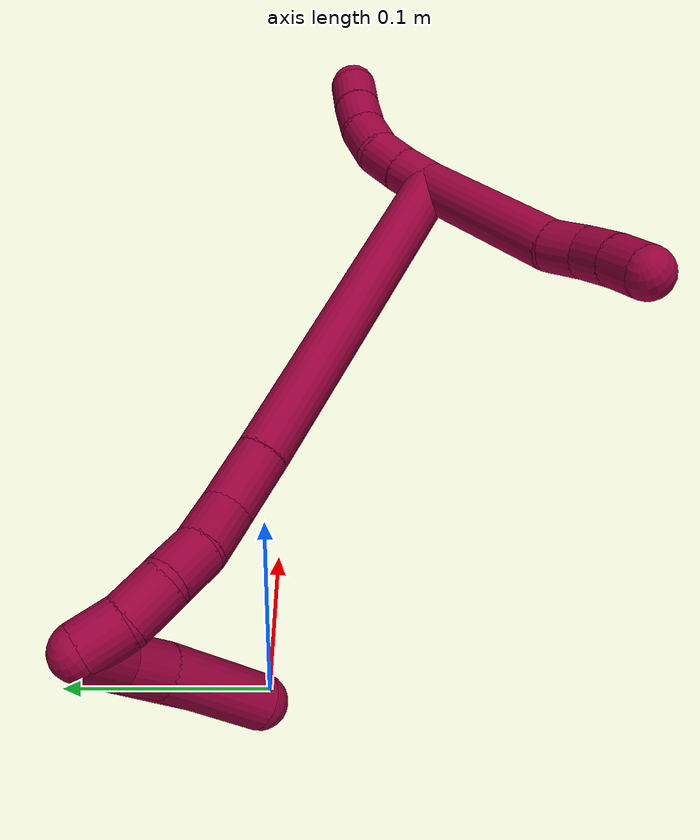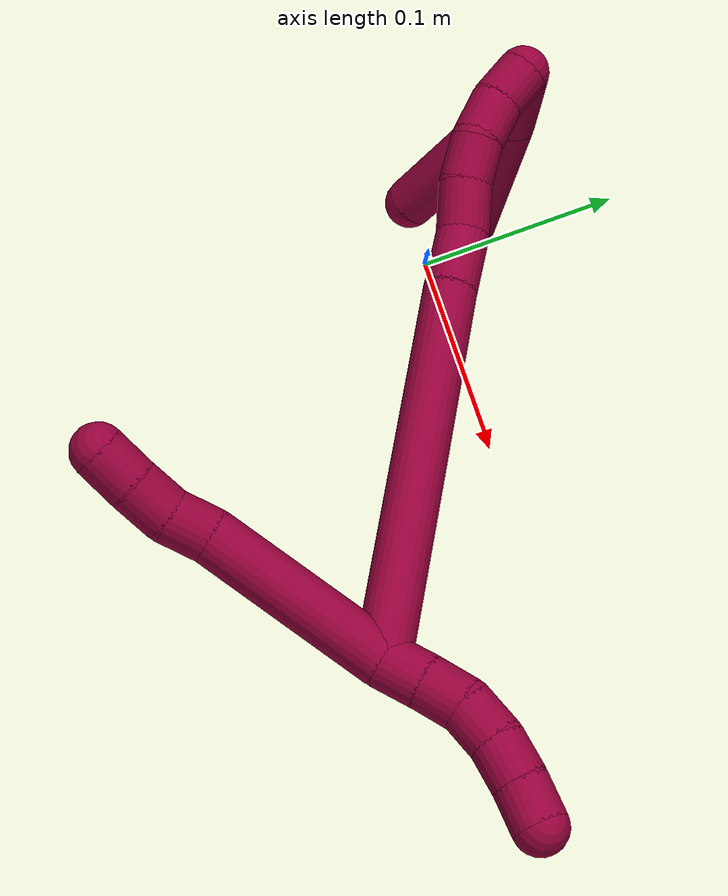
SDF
<sdf version="1.7">
 <world name="default">
  <model name="8">
   <static>0</static>
   <link name="8">
    <collision name="collision-cylinder-e_1_2_8">
     <pose>0.020692 -0.039762 0.001907 1.52287 0.479358 0.457712</pose>
     <geometry><cylinder><radius>0.0125</radius><length>0.089728</length></cylinder></geometry>
     <surface>
      <friction><ode><mu>1.16</mu><mu2>1.16</mu2><slip1>0</slip1><slip2>0</slip2></ode></friction>
      <contact><ode><kp>1e+06</kp><kd>1</kd><max_vel>0</max_vel><min_depth>0.001</min_depth></ode></contact>
     </surface>
    </collision>
    <visual name="visual-cylinder-e_1_2_8">
     <pose>0.020692 -0.039762 0.001907 1.52287 0.479358 0.457712</pose>
     <geometry><cylinder><radius>0.0125</radius><length>0.089728</length></cylinder></geometry>
     <material><ambient>0.584314 0 0.227451 1</ambient></material>
    </visual>
    <collision name="collision-cylinder-e_2_8_9">
     <pose>0.047856 -0.087165 0.004675 1.4586 0.699661 0.630343</pose>
     <geometry><cylinder><radius>0.0125</radius><length>0.020103</length></cylinder></geometry>
     <surface>
      <friction><ode><mu>1.16</mu><mu2>1.16</mu2><slip1>0</slip1><slip2>0</slip2></ode></friction>
      <contact><ode><kp>1e+06</kp><kd>1</kd><max_vel>0</max_vel><min_depth>0.001</min_depth></ode></contact>
     </surface>
    </collision>
    <visual name="visual-cylinder-e_2_8_9">
     <pose>0.047856 -0.087165 0.004675 1.4586 0.699661 0.630343</pose>
     <geometry><cylinder><radius>0.0125</radius><length>0.020103</length></cylinder></geometry>
     <material><ambient>0.584314 0 0.227451 1</ambient></material>
    </visual>
    <collision name="collision-cylinder-e_3_9_10">
     <pose>0.059062 -0.103151 0.008364 1.24406 0.492918 0.356907</pose>
     <geometry><cylinder><radius>0.0125</radius><length>0.020003</length></cylinder></geometry>
     <surface>
      <friction><ode><mu>1.16</mu><mu2>1.16</mu2><slip1>0</slip1><slip2>0</slip2></ode></friction>
      <contact><ode><kp>1e+06</kp><kd>1</kd><max_vel>0</max_vel><min_depth>0.001</min_depth></ode></contact>
     </surface>
    </collision>
    <visual name="visual-cylinder-e_3_9_10">
     <pose>0.059062 -0.103151 0.008364 1.24406 0.492918 0.356907</pose>
     <geometry><cylinder><radius>0.0125</radius><length>0.020003</length></cylinder></geometry>
     <material><ambient>0.584314 0 0.227451 1</ambient></material>
    </visual>
    <collision name="collision-cylinder-e_4_10_6">
     <pose>0.067954 -0.120309 0.013779 1.28526 0.425213 0.320445</pose>
     <geometry><cylinder><radius>0.0125</radius><length>0.020166</length></cylinder></geometry>
     <surface>
      <friction><ode><mu>1.16</mu><mu2>1.16</mu2><slip1>0</slip1><slip2>0</slip2></ode></friction>
      <contact><ode><kp>1e+06</kp><kd>1</kd><max_vel>0</max_vel><min_depth>0.001</min_depth></ode></contact>
     </surface>
    </collision>
    <visual name="visual-cylinder-e_4_10_6">
     <pose>0.067954 -0.120309 0.013779 1.28526 0.425213 0.320445</pose>
     <geometry><cylinder><radius>0.0125</radius><length>0.020166</length></cylinder></geometry>
     <material><ambient>0.584314 0 0.227451 1</ambient></material>
    </visual>
    <collision name="collision-cylinder-e_1_2_11">
     <pose>-0.0048 0.0086 0.00173 -1.37228 -0.500686 0.412816</pose>
     <geometry><cylinder><radius>0.0125</radius><length>0.02</length></cylinder></geometry>
     <surface>
      <friction><ode><mu>1.16</mu><mu2>1.16</mu2><slip1>0</slip1><slip2>0</slip2></ode></friction>
      <contact><ode><kp>1e+06</kp><kd>1</kd><max_vel>0</max_vel><min_depth>0.001</min_depth></ode></contact>
     </surface>
    </collision>
    <visual name="visual-cylinder-e_1_2_11">
     <pose>-0.0048 0.0086 0.00173 -1.37228 -0.500686 0.412816</pose>
     <geometry><cylinder><radius>0.0125</radius><length>0.02</length></cylinder></geometry>
     <material><ambient>0.584314 0 0.227451 1</ambient></material>
    </visual>
    <collision name="collision-cylinder-e_2_11_12">
     <pose>-0.013746 0.02607 0.005498 -1.34499 -0.427489 0.342317</pose>
     <geometry><cylinder><radius>0.0125</radius><length>0.02</length></cylinder></geometry>
     <surface>
      <friction><ode><mu>1.16</mu><mu2>1.16</mu2><slip1>0</slip1><slip2>0</slip2></ode></friction>
      <contact><ode><kp>1e+06</kp><kd>1</kd><max_vel>0</max_vel><min_depth>0.001</min_depth></ode></contact>
     </surface>
    </collision>
    <visual name="visual-cylinder-e_2_11_12">
     <pose>-0.013746 0.02607 0.005498 -1.34499 -0.427489 0.342317</pose>
     <geometry><cylinder><radius>0.0125</radius><length>0.02</length></cylinder></geometry>
     <material><ambient>0.584314 0 0.227451 1</ambient></material>
    </visual>
    <collision name="collision-cylinder-e_3_12_13">
     <pose>-0.019208 0.044813 0.008416 -1.48178 -0.131906 0.120686</pose>
     <geometry><cylinder><radius>0.0125</radius><length>0.02</length></cylinder></geometry>
     <surface>
      <friction><ode><mu>1.16</mu><mu2>1.16</mu2><slip1>0</slip1><slip2>0</slip2></ode></friction>
      <contact><ode><kp>1e+06</kp><kd>1</kd><max_vel>0</max_vel><min_depth>0.001</min_depth></ode></contact>
     </surface>
    </collision>
    <visual name="visual-cylinder-e_3_12_13">
     <pose>-0.019208 0.044813 0.008416 -1.48178 -0.131906 0.120686</pose>
     <geometry><cylinder><radius>0.0125</radius><length>0.02</length></cylinder></geometry>
     <material><ambient>0.584314 0 0.227451 1</ambient></material>
    </visual>
    <collision name="collision-cylinder-e_4_13_14">
     <pose>-0.020009 0.064673 0.009383 -1.56227 0.051375 -0.050939</pose>
     <geometry><cylinder><radius>0.0125</radius><length>0.02</length></cylinder></geometry>
     <surface>
      <friction><ode><mu>1.16</mu><mu2>1.16</mu2><slip1>0</slip1><slip2>0</slip2></ode></friction>
      <contact><ode><kp>1e+06</kp><kd>1</kd><max_vel>0</max_vel><min_depth>0.001</min_depth></ode></contact>
     </surface>
    </collision>
    <visual name="visual-cylinder-e_4_13_14">
     <pose>-0.020009 0.064673 0.009383 -1.56227 0.051375 -0.050939</pose>
     <geometry><cylinder><radius>0.0125</radius><length>0.02</length></cylinder></geometry>
     <material><ambient>0.584314 0 0.227451 1</ambient></material>
    </visual>
    <collision name="collision-cylinder-e_5_14_5">
     <pose>-0.018345 0.084584 0.009046 -1.61334 0.115348 -0.120352</pose>
     <geometry><cylinder><radius>0.0125</radius><length>0.02</length></cylinder></geometry>
     <surface>
      <friction><ode><mu>1.16</mu><mu2>1.16</mu2><slip1>0</slip1><slip2>0</slip2></ode></friction>
      <contact><ode><kp>1e+06</kp><kd>1</kd><max_vel>0</max_vel><min_depth>0.001</min_depth></ode></contact>
     </surface>
    </collision>
    <visual name="visual-cylinder-e_5_14_5">
     <pose>-0.018345 0.084584 0.009046 -1.61334 0.115348 -0.120352</pose>
     <geometry><cylinder><radius>0.0125</radius><length>0.02</length></cylinder></geometry>
     <material><ambient>0.584314 0 0.227451 1</ambient></material>
    </visual>
    <collision name="collision-cylinder-e_1_2_15">
     <pose>-0.056374 -0.068422 0.014979 1.35528 -0.677695 -0.552745</pose>
     <geometry><cylinder><radius>0.0125</radius><length>0.179821</length></cylinder></geometry>
     <surface>
      <friction><ode><mu>1.16</mu><mu2>1.16</mu2><slip1>0</slip1><slip2>0</slip2></ode></friction>
      <contact><ode><kp>1e+06</kp><kd>1</kd><max_vel>0</max_vel><min_depth>0.001</min_depth></ode></contact>
     </surface>
    </collision>
    <visual name="visual-cylinder-e_1_2_15">
     <pose>-0.056374 -0.068422 0.014979 1.35528 -0.677695 -0.552745</pose>
     <geometry><cylinder><radius>0.0125</radius><length>0.179821</length></cylinder></geometry>
     <material><ambient>0.584314 0 0.227451 1</ambient></material>
    </visual>
    <collision name="collision-cylinder-e_2_15_16">
     <pose>-0.12289 -0.148185 0.032173 1.37794 -0.720359 -0.601534</pose>
     <geometry><cylinder><radius>0.0125</radius><length>0.030752</length></cylinder></geometry>
     <surface>
      <friction><ode><mu>1.16</mu><mu2>1.16</mu2><slip1>0</slip1><slip2>0</slip2></ode></friction>
      <contact><ode><kp>1e+06</kp><kd>1</kd><max_vel>0</max_vel><min_depth>0.001</min_depth></ode></contact>
     </surface>
    </collision>
    <visual name="visual-cylinder-e_2_15_16">
     <pose>-0.12289 -0.148185 0.032173 1.37794 -0.720359 -0.601534</pose>
     <geometry><cylinder><radius>0.0125</radius><length>0.030752</length></cylinder></geometry>
     <material><ambient>0.584314 0 0.227451 1</ambient></material>
    </visual>
    <collision name="collision-cylinder-e_3_16_17">
     <pose>-0.138416 -0.169495 0.039236 1.1181 -0.452103 -0.285804</pose>
     <geometry><cylinder><radius>0.0125</radius><length>0.024644</length></cylinder></geometry>
     <surface>
      <friction><ode><mu>1.16</mu><mu2>1.16</mu2><slip1>0</slip1><slip2>0</slip2></ode></friction>
      <contact><ode><kp>1e+06</kp><kd>1</kd><max_vel>0</max_vel><min_depth>0.001</min_depth></ode></contact>
     </surface>
    </collision>
    <visual name="visual-cylinder-e_3_16_17">
     <pose>-0.138416 -0.169495 0.039236 1.1181 -0.452103 -0.285804</pose>
     <geometry><cylinder><radius>0.0125</radius><length>0.024644</length></cylinder></geometry>
     <material><ambient>0.584314 0 0.227451 1</ambient></material>
    </visual>
    <collision name="collision-cylinder-e_4_17_18">
     <pose>-0.150009 -0.186574 0.048951 0.970602 -0.624384 -0.33718</pose>
     <geometry><cylinder><radius>0.0125</radius><length>0.021244</length></cylinder></geometry>
     <surface>
      <friction><ode><mu>1.16</mu><mu2>1.16</mu2><slip1>0</slip1><slip2>0</slip2></ode></friction>
      <contact><ode><kp>1e+06</kp><kd>1</kd><max_vel>0</max_vel><min_depth>0.001</min_depth></ode></contact>
     </surface>
    </collision>
    <visual name="visual-cylinder-e_4_17_18">
     <pose>-0.150009 -0.186574 0.048951 0.970602 -0.624384 -0.33718</pose>
     <geometry><cylinder><radius>0.0125</radius><length>0.021244</length></cylinder></geometry>
     <material><ambient>0.584314 0 0.227451 1</ambient></material>
    </visual>
    <collision name="collision-cylinder-e_5_18_19">
     <pose>-0.164964 -0.200101 0.056662 1.1536 -0.894604 -0.605071</pose>
     <geometry><cylinder><radius>0.0125</radius><length>0.022426</length></cylinder></geometry>
     <surface>
      <friction><ode><mu>1.16</mu><mu2>1.16</mu2><slip1>0</slip1><slip2>0</slip2></ode></friction>
      <contact><ode><kp>1e+06</kp><kd>1</kd><max_vel>0</max_vel><min_depth>0.001</min_depth></ode></contact>
     </surface>
    </collision>
    <visual name="visual-cylinder-e_5_18_19">
     <pose>-0.164964 -0.200101 0.056662 1.1536 -0.894604 -0.605071</pose>
     <geometry><cylinder><radius>0.0125</radius><length>0.022426</length></cylinder></geometry>
     <material><ambient>0.584314 0 0.227451 1</ambient></material>
    </visual>
    <collision name="collision-cylinder-e_6_19_1">
     <pose>-0.182946 -0.210387 0.062847 0.858657 -1.06518 -0.527115</pose>
     <geometry><cylinder><radius>0.0125</radius><length>0.021113</length></cylinder></geometry>
     <surface>
      <friction><ode><mu>1.16</mu><mu2>1.16</mu2><slip1>0</slip1><slip2>0</slip2></ode></friction>
      <contact><ode><kp>1e+06</kp><kd>1</kd><max_vel>0</max_vel><min_depth>0.001</min_depth></ode></contact>
     </surface>
    </collision>
    <visual name="visual-cylinder-e_6_19_1">
     <pose>-0.182946 -0.210387 0.062847 0.858657 -1.06518 -0.527115</pose>
     <geometry><cylinder><radius>0.0125</radius><length>0.021113</length></cylinder></geometry>
     <material><ambient>0.584314 0 0.227451 1</ambient></material>
    </visual>
    <collision name="collision-cylinder-e_1_1_20">
     <pose>-0.190584 -0.212897 0.054057 -3.02991 0.130141 -1.72356</pose>
     <geometry><cylinder><radius>0.0125</radius><length>0.024621</length></cylinder></geometry>
     <surface>
      <friction><ode><mu>1.16</mu><mu2>1.16</mu2><slip1>0</slip1><slip2>0</slip2></ode></friction>
      <contact><ode><kp>1e+06</kp><kd>1</kd><max_vel>0</max_vel><min_depth>0.001</min_depth></ode></contact>
     </surface>
    </collision>
    <visual name="visual-cylinder-e_1_1_20">
     <pose>-0.190584 -0.212897 0.054057 -3.02991 0.130141 -1.72356</pose>
     <geometry><cylinder><radius>0.0125</radius><length>0.024621</length></cylinder></geometry>
     <material><ambient>0.584314 0 0.227451 1</ambient></material>
    </visual>
    <collision name="collision-cylinder-e_2_20_21">
     <pose>-0.18518 -0.211351 0.031331 -3.12404 0.344796 -3.04087</pose>
     <geometry><cylinder><radius>0.0125</radius><length>0.02252</length></cylinder></geometry>
     <surface>
      <friction><ode><mu>1.16</mu><mu2>1.16</mu2><slip1>0</slip1><slip2>0</slip2></ode></friction>
      <contact><ode><kp>1e+06</kp><kd>1</kd><max_vel>0</max_vel><min_depth>0.001</min_depth></ode></contact>
     </surface>
    </collision>
    <visual name="visual-cylinder-e_2_20_21">
     <pose>-0.18518 -0.211351 0.031331 -3.12404 0.344796 -3.04087</pose>
     <geometry><cylinder><radius>0.0125</radius><length>0.02252</length></cylinder></geometry>
     <material><ambient>0.584314 0 0.227451 1</ambient></material>
    </visual>
    <collision name="collision-cylinder-e_3_21_4">
     <pose>-0.171785 -0.214223 -0.003702 3.01708 0.371294 2.50062</pose>
     <geometry><cylinder><radius>0.0125</radius><length>0.052859</length></cylinder></geometry>
     <surface>
      <friction><ode><mu>1.16</mu><mu2>1.16</mu2><slip1>0</slip1><slip2>0</slip2></ode></friction>
      <contact><ode><kp>1e+06</kp><kd>1</kd><max_vel>0</max_vel><min_depth>0.001</min_depth></ode></contact>
     </surface>
    </collision>
    <visual name="visual-cylinder-e_3_21_4">
     <pose>-0.171785 -0.214223 -0.003702 3.01708 0.371294 2.50062</pose>
     <geometry><cylinder><radius>0.0125</radius><length>0.052859</length></cylinder></geometry>
     <material><ambient>0.584314 0 0.227451 1</ambient></material>
    </visual>
    <collision name="collision-cylinder-e_1_1_22">
     <pose>-0.192504 -0.211164 0.050367 -2.94852 -0.020008 0.205891</pose>
     <geometry><cylinder><radius>0.0125</radius><length>0.032247</length></cylinder></geometry>
     <surface>
      <friction><ode><mu>1.16</mu><mu2>1.16</mu2><slip1>0</slip1><slip2>0</slip2></ode></friction>
      <contact><ode><kp>1e+06</kp><kd>1</kd><max_vel>0</max_vel><min_depth>0.001</min_depth></ode></contact>
     </surface>
    </collision>
    <visual name="visual-cylinder-e_1_1_22">
     <pose>-0.192504 -0.211164 0.050367 -2.94852 -0.020008 0.205891</pose>
     <geometry><cylinder><radius>0.0125</radius><length>0.032247</length></cylinder></geometry>
     <material><ambient>0.584314 0 0.227451 1</ambient></material>
    </visual>
    <collision name="collision-cylinder-e_2_22_3">
     <pose>-0.190996 -0.202668 0.001153 -2.98117 0.054071 -0.649055</pose>
     <geometry><cylinder><radius>0.0125</radius><length>0.067753</length></cylinder></geometry>
     <surface>
      <friction><ode><mu>1.16</mu><mu2>1.16</mu2><slip1>0</slip1><slip2>0</slip2></ode></friction>
      <contact><ode><kp>1e+06</kp><kd>1</kd><max_vel>0</max_vel><min_depth>0.001</min_depth></ode></contact>
     </surface>
    </collision>
    <visual name="visual-cylinder-e_2_22_3">
     <pose>-0.190996 -0.202668 0.001153 -2.98117 0.054071 -0.649055</pose>
     <geometry><cylinder><radius>0.0125</radius><length>0.067753</length></cylinder></geometry>
     <material><ambient>0.584314 0 0.227451 1</ambient></material>
    </visual>
    <collision name="collision-sphere-3">
     <pose>-0.189165 -0.197265 -0.032239 0 -0 0</pose>
     <geometry><sphere><radius>0.0125</radius></sphere></geometry>
     <surface>
      <friction><ode><mu>1.16</mu><mu2>1.16</mu2><slip1>0</slip1><slip2>0</slip2></ode></friction>
      <contact><ode><kp>1e+06</kp><kd>1</kd><max_vel>0</max_vel><min_depth>0.001</min_depth></ode></contact>
     </surface>
    </collision>
    <visual name="visual-sphere-3">
     <pose>-0.189165 -0.197265 -0.032239 0 -0 0</pose>
     <geometry><sphere><radius>0.0125</radius></sphere></geometry>
     <material><ambient>0.584314 0 0.227451 1</ambient></material>
    </visual>
    <collision name="collision-sphere-22">
     <pose>-0.192826 -0.208071 0.034546 0 -0 0</pose>
     <geometry><sphere><radius>0.0125</radius></sphere></geometry>
     <surface>
      <friction><ode><mu>1.16</mu><mu2>1.16</mu2><slip1>0</slip1><slip2>0</slip2></ode></friction>
      <contact><ode><kp>1e+06</kp><kd>1</kd><max_vel>0</max_vel><min_depth>0.001</min_depth></ode></contact>
     </surface>
    </collision>
    <visual name="visual-sphere-22">
     <pose>-0.192826 -0.208071 0.034546 0 -0 0</pose>
     <geometry><sphere><radius>0.0125</radius></sphere></geometry>
     <material><ambient>0.584314 0 0.227451 1</ambient></material>
    </visual>
    <collision name="collision-sphere-4">
     <pose>-0.162196 -0.217282 -0.02814 0 -0 0</pose>
     <geometry><sphere><radius>0.0125</radius></sphere></geometry>
     <surface>
      <friction><ode><mu>1.16</mu><mu2>1.16</mu2><slip1>0</slip1><slip2>0</slip2></ode></friction>
      <contact><ode><kp>1e+06</kp><kd>1</kd><max_vel>0</max_vel><min_depth>0.001</min_depth></ode></contact>
     </surface>
    </collision>
    <visual name="visual-sphere-4">
     <pose>-0.162196 -0.217282 -0.02814 0 -0 0</pose>
     <geometry><sphere><radius>0.0125</radius></sphere></geometry>
     <material><ambient>0.584314 0 0.227451 1</ambient></material>
    </visual>
    <collision name="collision-sphere-21">
     <pose>-0.181374 -0.211165 0.020735 0 -0 0</pose>
     <geometry><sphere><radius>0.0125</radius></sphere></geometry>
     <surface>
      <friction><ode><mu>1.16</mu><mu2>1.16</mu2><slip1>0</slip1><slip2>0</slip2></ode></friction>
      <contact><ode><kp>1e+06</kp><kd>1</kd><max_vel>0</max_vel><min_depth>0.001</min_depth></ode></contact>
     </surface>
    </collision>
    <visual name="visual-sphere-21">
     <pose>-0.181374 -0.211165 0.020735 0 -0 0</pose>
     <geometry><sphere><radius>0.0125</radius></sphere></geometry>
     <material><ambient>0.584314 0 0.227451 1</ambient></material>
    </visual>
    <collision name="collision-sphere-20">
     <pose>-0.188986 -0.211537 0.041927 0 -0 0</pose>
     <geometry><sphere><radius>0.0125</radius></sphere></geometry>
     <surface>
      <friction><ode><mu>1.16</mu><mu2>1.16</mu2><slip1>0</slip1><slip2>0</slip2></ode></friction>
      <contact><ode><kp>1e+06</kp><kd>1</kd><max_vel>0</max_vel><min_depth>0.001</min_depth></ode></contact>
     </surface>
    </collision>
    <visual name="visual-sphere-20">
     <pose>-0.188986 -0.211537 0.041927 0 -0 0</pose>
     <geometry><sphere><radius>0.0125</radius></sphere></geometry>
     <material><ambient>0.584314 0 0.227451 1</ambient></material>
    </visual>
    <collision name="collision-sphere-11">
     <pose>-0.009601 0.0172 0.00346 0 -0 0</pose>
     <geometry><sphere><radius>0.0125</radius></sphere></geometry>
     <surface>
      <friction><ode><mu>1.16</mu><mu2>1.16</mu2><slip1>0</slip1><slip2>0</slip2></ode></friction>
      <contact><ode><kp>1e+06</kp><kd>1</kd><max_vel>0</max_vel><min_depth>0.001</min_depth></ode></contact>
     </surface>
    </collision>
    <visual name="visual-sphere-11">
     <pose>-0.009601 0.0172 0.00346 0 -0 0</pose>
     <geometry><sphere><radius>0.0125</radius></sphere></geometry>
     <material><ambient>0.584314 0 0.227451 1</ambient></material>
    </visual>
    <collision name="collision-sphere-6">
     <pose>0.072113 -0.129123 0.016366 0 -0 0</pose>
     <geometry><sphere><radius>0.0125</radius></sphere></geometry>
     <surface>
      <friction><ode><mu>1.16</mu><mu2>1.16</mu2><slip1>0</slip1><slip2>0</slip2></ode></friction>
      <contact><ode><kp>1e+06</kp><kd>1</kd><max_vel>0</max_vel><min_depth>0.001</min_depth></ode></contact>
     </surface>
    </collision>
    <visual name="visual-sphere-6">
     <pose>0.072113 -0.129123 0.016366 0 -0 0</pose>
     <geometry><sphere><radius>0.0125</radius></sphere></geometry>
     <material><ambient>0.584314 0 0.227451 1</ambient></material>
    </visual>
    <collision name="collision-sphere-10">
     <pose>0.063794 -0.111496 0.011192 0 -0 0</pose>
     <geometry><sphere><radius>0.0125</radius></sphere></geometry>
     <surface>
      <friction><ode><mu>1.16</mu><mu2>1.16</mu2><slip1>0</slip1><slip2>0</slip2></ode></friction>
      <contact><ode><kp>1e+06</kp><kd>1</kd><max_vel>0</max_vel><min_depth>0.001</min_depth></ode></contact>
     </surface>
    </collision>
    <visual name="visual-sphere-10">
     <pose>0.063794 -0.111496 0.011192 0 -0 0</pose>
     <geometry><sphere><radius>0.0125</radius></sphere></geometry>
     <material><ambient>0.584314 0 0.227451 1</ambient></material>
    </visual>
    <collision name="collision-sphere-9">
     <pose>0.054329 -0.094807 0.005536 0 -0 0</pose>
     <geometry><sphere><radius>0.0125</radius></sphere></geometry>
     <surface>
      <friction><ode><mu>1.16</mu><mu2>1.16</mu2><slip1>0</slip1><slip2>0</slip2></ode></friction>
      <contact><ode><kp>1e+06</kp><kd>1</kd><max_vel>0</max_vel><min_depth>0.001</min_depth></ode></contact>
     </surface>
    </collision>
    <visual name="visual-sphere-9">
     <pose>0.054329 -0.094807 0.005536 0 -0 0</pose>
     <geometry><sphere><radius>0.0125</radius></sphere></geometry>
     <material><ambient>0.584314 0 0.227451 1</ambient></material>
    </visual>
    <collision name="collision-sphere-2">
     <geometry><sphere><radius>0.0125</radius></sphere></geometry>
     <surface>
      <friction><ode><mu>1.16</mu><mu2>1.16</mu2><slip1>0</slip1><slip2>0</slip2></ode></friction>
      <contact><ode><kp>1e+06</kp><kd>1</kd><max_vel>0</max_vel><min_depth>0.001</min_depth></ode></contact>
     </surface>
    </collision>
    <visual name="visual-sphere-2">
     <geometry><sphere><radius>0.0125</radius></sphere></geometry>
     <material><ambient>0.584314 0 0.227451 1</ambient></material>
    </visual>
    <collision name="collision-sphere-19">
     <pose>-0.17371 -0.206517 0.059505 0 -0 0</pose>
     <geometry><sphere><radius>0.0125</radius></sphere></geometry>
     <surface>
      <friction><ode><mu>1.16</mu><mu2>1.16</mu2><slip1>0</slip1><slip2>0</slip2></ode></friction>
      <contact><ode><kp>1e+06</kp><kd>1</kd><max_vel>0</max_vel><min_depth>0.001</min_depth></ode></contact>
     </surface>
    </collision>
    <visual name="visual-sphere-19">
     <pose>-0.17371 -0.206517 0.059505 0 -0 0</pose>
     <geometry><sphere><radius>0.0125</radius></sphere></geometry>
     <material><ambient>0.584314 0 0.227451 1</ambient></material>
    </visual>
    <collision name="collision-sphere-8">
     <pose>0.041383 -0.079523 0.003814 0 -0 0</pose>
     <geometry><sphere><radius>0.0125</radius></sphere></geometry>
     <surface>
      <friction><ode><mu>1.16</mu><mu2>1.16</mu2><slip1>0</slip1><slip2>0</slip2></ode></friction>
      <contact><ode><kp>1e+06</kp><kd>1</kd><max_vel>0</max_vel><min_depth>0.001</min_depth></ode></contact>
     </surface>
    </collision>
    <visual name="visual-sphere-8">
     <pose>0.041383 -0.079523 0.003814 0 -0 0</pose>
     <geometry><sphere><radius>0.0125</radius></sphere></geometry>
     <material><ambient>0.584314 0 0.227451 1</ambient></material>
    </visual>
    <collision name="collision-sphere-12">
     <pose>-0.017892 0.034939 0.007535 0 -0 0</pose>
     <geometry><sphere><radius>0.0125</radius></sphere></geometry>
     <surface>
      <friction><ode><mu>1.16</mu><mu2>1.16</mu2><slip1>0</slip1><slip2>0</slip2></ode></friction>
      <contact><ode><kp>1e+06</kp><kd>1</kd><max_vel>0</max_vel><min_depth>0.001</min_depth></ode></contact>
     </surface>
    </collision>
    <visual name="visual-sphere-12">
     <pose>-0.017892 0.034939 0.007535 0 -0 0</pose>
     <geometry><sphere><radius>0.0125</radius></sphere></geometry>
     <material><ambient>0.584314 0 0.227451 1</ambient></material>
    </visual>
    <collision name="collision-sphere-13">
     <pose>-0.020523 0.054686 0.009298 0 -0 0</pose>
     <geometry><sphere><radius>0.0125</radius></sphere></geometry>
     <surface>
      <friction><ode><mu>1.16</mu><mu2>1.16</mu2><slip1>0</slip1><slip2>0</slip2></ode></friction>
      <contact><ode><kp>1e+06</kp><kd>1</kd><max_vel>0</max_vel><min_depth>0.001</min_depth></ode></contact>
     </surface>
    </collision>
    <visual name="visual-sphere-13">
     <pose>-0.020523 0.054686 0.009298 0 -0 0</pose>
     <geometry><sphere><radius>0.0125</radius></sphere></geometry>
     <material><ambient>0.584314 0 0.227451 1</ambient></material>
    </visual>
    <collision name="collision-sphere-14">
     <pose>-0.019496 0.074659 0.009468 0 -0 0</pose>
     <geometry><sphere><radius>0.0125</radius></sphere></geometry>
     <surface>
      <friction><ode><mu>1.16</mu><mu2>1.16</mu2><slip1>0</slip1><slip2>0</slip2></ode></friction>
      <contact><ode><kp>1e+06</kp><kd>1</kd><max_vel>0</max_vel><min_depth>0.001</min_depth></ode></contact>
     </surface>
    </collision>
    <visual name="visual-sphere-14">
     <pose>-0.019496 0.074659 0.009468 0 -0 0</pose>
     <geometry><sphere><radius>0.0125</radius></sphere></geometry>
     <material><ambient>0.584314 0 0.227451 1</ambient></material>
    </visual>
    <collision name="collision-sphere-5">
     <pose>-0.017194 0.094508 0.008623 0 -0 0</pose>
     <geometry><sphere><radius>0.0125</radius></sphere></geometry>
     <surface>
      <friction><ode><mu>1.16</mu><mu2>1.16</mu2><slip1>0</slip1><slip2>0</slip2></ode></friction>
      <contact><ode><kp>1e+06</kp><kd>1</kd><max_vel>0</max_vel><min_depth>0.001</min_depth></ode></contact>
     </surface>
    </collision>
    <visual name="visual-sphere-5">
     <pose>-0.017194 0.094508 0.008623 0 -0 0</pose>
     <geometry><sphere><radius>0.0125</radius></sphere></geometry>
     <material><ambient>0.584314 0 0.227451 1</ambient></material>
    </visual>
    <collision name="collision-sphere-15">
     <pose>-0.112747 -0.136843 0.029958 0 -0 0</pose>
     <geometry><sphere><radius>0.0125</radius></sphere></geometry>
     <surface>
      <friction><ode><mu>1.16</mu><mu2>1.16</mu2><slip1>0</slip1><slip2>0</slip2></ode></friction>
      <contact><ode><kp>1e+06</kp><kd>1</kd><max_vel>0</max_vel><min_depth>0.001</min_depth></ode></contact>
     </surface>
    </collision>
    <visual name="visual-sphere-15">
     <pose>-0.112747 -0.136843 0.029958 0 -0 0</pose>
     <geometry><sphere><radius>0.0125</radius></sphere></geometry>
     <material><ambient>0.584314 0 0.227451 1</ambient></material>
    </visual>
    <collision name="collision-sphere-16">
     <pose>-0.133033 -0.159527 0.034388 0 -0 0</pose>
     <geometry><sphere><radius>0.0125</radius></sphere></geometry>
     <surface>
      <friction><ode><mu>1.16</mu><mu2>1.16</mu2><slip1>0</slip1><slip2>0</slip2></ode></friction>
      <contact><ode><kp>1e+06</kp><kd>1</kd><max_vel>0</max_vel><min_depth>0.001</min_depth></ode></contact>
     </surface>
    </collision>
    <visual name="visual-sphere-16">
     <pose>-0.133033 -0.159527 0.034388 0 -0 0</pose>
     <geometry><sphere><radius>0.0125</radius></sphere></geometry>
     <material><ambient>0.584314 0 0.227451 1</ambient></material>
    </visual>
    <collision name="collision-sphere-17">
     <pose>-0.143799 -0.179462 0.044084 0 -0 0</pose>
     <geometry><sphere><radius>0.0125</radius></sphere></geometry>
     <surface>
      <friction><ode><mu>1.16</mu><mu2>1.16</mu2><slip1>0</slip1><slip2>0</slip2></ode></friction>
      <contact><ode><kp>1e+06</kp><kd>1</kd><max_vel>0</max_vel><min_depth>0.001</min_depth></ode></contact>
     </surface>
    </collision>
    <visual name="visual-sphere-17">
     <pose>-0.143799 -0.179462 0.044084 0 -0 0</pose>
     <geometry><sphere><radius>0.0125</radius></sphere></geometry>
     <material><ambient>0.584314 0 0.227451 1</ambient></material>
    </visual>
    <collision name="collision-sphere-18">
     <pose>-0.156219 -0.193686 0.053819 0 -0 0</pose>
     <geometry><sphere><radius>0.0125</radius></sphere></geometry>
     <surface>
      <friction><ode><mu>1.16</mu><mu2>1.16</mu2><slip1>0</slip1><slip2>0</slip2></ode></friction>
      <contact><ode><kp>1e+06</kp><kd>1</kd><max_vel>0</max_vel><min_depth>0.001</min_depth></ode></contact>
     </surface>
    </collision>
    <visual name="visual-sphere-18">
     <pose>-0.156219 -0.193686 0.053819 0 -0 0</pose>
     <geometry><sphere><radius>0.0125</radius></sphere></geometry>
     <material><ambient>0.584314 0 0.227451 1</ambient></material>
    </visual>
    <collision name="collision-sphere-1">
     <pose>-0.192181 -0.214257 0.066188 0 -0 0</pose>
     <geometry><sphere><radius>0.0125</radius></sphere></geometry>
     <surface>
      <friction><ode><mu>1.16</mu><mu2>1.16</mu2><slip1>0</slip1><slip2>0</slip2></ode></friction>
      <contact><ode><kp>1e+06</kp><kd>1</kd><max_vel>0</max_vel><min_depth>0.001</min_depth></ode></contact>
     </surface>
    </collision>
    <visual name="visual-sphere-1">
     <pose>-0.192181 -0.214257 0.066188 0 -0 0</pose>
     <geometry><sphere><radius>0.0125</radius></sphere></geometry>
     <material><ambient>0.584314 0 0.227451 1</ambient></material>
    </visual>
    <inertial>
     <pose>-0.081759 -0.108041 0.01763 0 -0 0</pose>
     <mass>0.75</mass>
     <inertia><ixx>0.000211</ixx><ixy>0</ixy><ixz>0</ixz><iyy>5.5e-05</iyy><iyz>0</iyz><izz>0.0007</izz></inertia>
    </inertial>
   </link>
   <pose>0.16373 -0.080415 0.195777 0.384287 -0.508499 -1.5365</pose>
  </model>
 </world>
</sdf>
